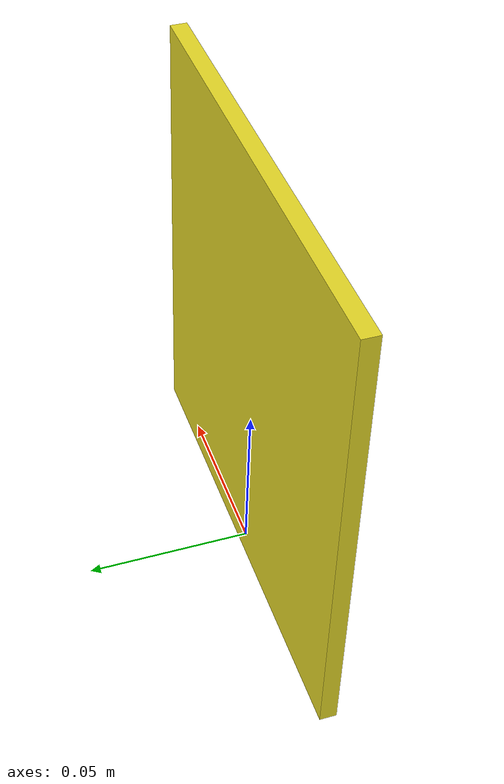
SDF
<?xml version="1.0"?>
<sdf version="1.6">
  <model name="yellow_off">
    <static>true</static>
    <pose>0 0 0.07 0 0 0</pose>
    <link name="yellow_off">
      <collision name="collision">
        <geometry>
          <box>
            <size>0.14 0.005 0.14</size>
          </box>
        </geometry>
      </collision>
      <visual name="visual">
        <geometry>
          <box>
            <size>0.14 0.005 0.14</size>
          </box>
        </geometry>
        <material>
          <script>
            <uri>model://yellow_off/materials/scripts/yellow_off.material</uri>
            <uri>model://yellow_off/materials/textures/yellow_off.png</uri>
            <name>yellow_off</name>
          </script>
        </material>
      </visual>
    </link>
  </model>
</sdf>
